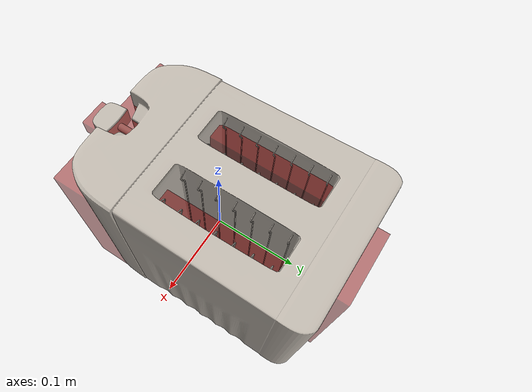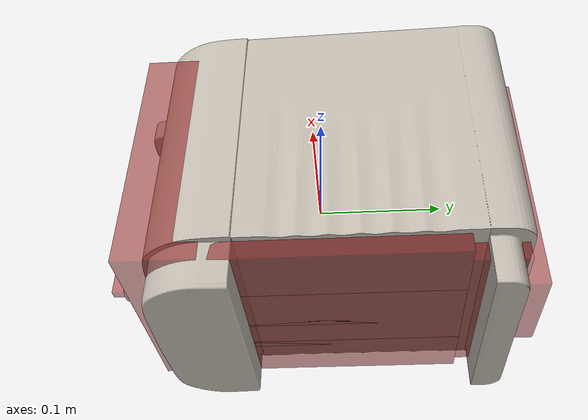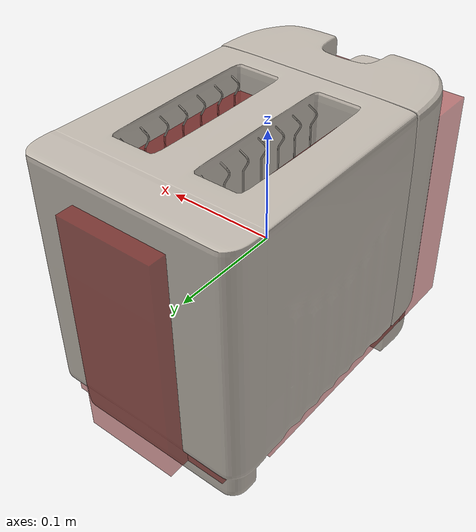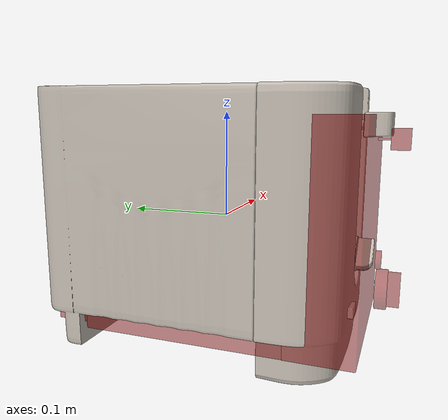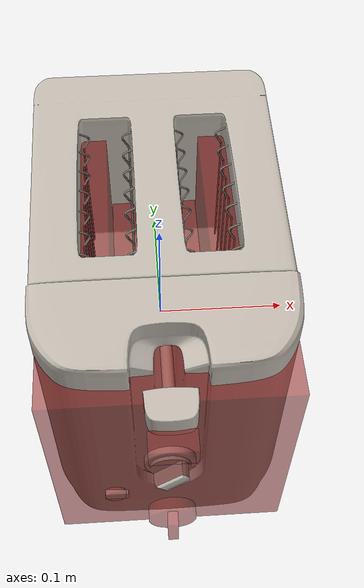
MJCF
<?xml version='1.0' encoding='UTF-8'?>
<mujoco model="model">
  <option timestep="0.002" gravity="0.0 0.0 -9.81"/>
  <compiler angle="radian"/>
  <asset>
    <mesh file="visuals/button_cancel.obj" name="button_cancel_vis"/>
    <mesh file="visuals/knob_doneness.obj" name="knob_doneness_vis"/>
    <mesh file="visuals/lever.obj" name="lever_vis"/>
    <mesh file="visuals/Body001.obj" name="Body001_vis"/>
    <mesh file="visuals/Body002.obj" name="Body002_vis"/>
    <texture file="visuals/T_BC001.png" name="Body001_material" type="2d"/>
    <material name="Body001_material" rgba="1 1 1 1.0" texture="Body001_material" shininess="0.141421377658844" specular="0.3103448502657381"/>
    <texture file="visuals/T_BC001.png" name="button_cancel_material" type="2d"/>
    <material name="button_cancel_material" rgba="1 1 1 1.0" texture="button_cancel_material" shininess="0.141421377658844" specular="0.3103448502657381"/>
    <texture file="visuals/T_BC001.png" name="knob_doneness_material" type="2d"/>
    <material name="knob_doneness_material" rgba="1 1 1 1.0" texture="knob_doneness_material" shininess="0.141421377658844" specular="0.3103448502657381"/>
    <texture file="visuals/T_BC001.png" name="lever_material" type="2d"/>
    <material name="lever_material" rgba="1 1 1 1.0" texture="lever_material" shininess="0.141421377658844" specular="0.3103448502657381"/>
    <texture file="visuals/T_BC001.png" name="Body002_material" type="2d"/>
    <material name="Body002_material" rgba="1 1 1 1.0" texture="Body002_material" shininess="0.141421377658844" specular="2"/>
  </asset>
  <default>
    <default class="visual">
      <geom conaffinity="0" contype="0" group="1" type="mesh"/>
    </default>
    <default class="collision_1">
      <geom group="0" rgba="0.5 0 0 0.5" solref="0.004 1" solimp="0.998 0.998 0.001"/>
    </default>
    <default class="collision_2">
      <geom group="0" rgba="0.5 0 0 0.5" solref="0.004 1" solimp="0.998 0.998 0.001"/>
    </default>
    <default class="collision_3">
      <geom group="0" rgba="0.5 0 0 0.5" solref="0.004 1" solimp="0.998 0.998 0.001"/>
    </default>
    <default class="collision_4">
      <geom group="0" rgba="0.5 0 0 0.5" solref="0.004 1" solimp="0.998 0.998 0.001"/>
    </default>
    <default class="collision_5">
      <geom group="0" rgba="0.5 0 0 0.5" solref="0.004 1" solimp="0.998 0.998 0.001"/>
    </default>
    <default class="spawn">
      <geom group="0" rgba="1 1 1 0.5" contype="0" conaffinity="0"/>
      <site group="0" rgba="1 1 1 0.5"/>
    </default>
    <default class="region">
      <geom group="1" conaffinity="0" contype="0" rgba="0 1 0 0" mass="0"/>
    </default>
  </default>
  <worldbody>
    <body>
      <body name="object">
        <geom mesh="Body001_vis" type="mesh" solimp="0.998 0.998 0.001" solref="0.001 1" friction="0.95 0.3 0.1" class="visual" material="Body001_material"/>
        <geom type="box" pos="0.00018687 -0.10919147 -0.00121267" size="0.08817454427480698 0.029730087146162987 0.0990498885512352" quat="1.0 0.0 0.0 0.0" class="collision_1"/>
        <geom type="box" pos="-0.00005249 0.15723792 -0.00003267" size="0.04115726798772812 0.009681490249931812 0.1002298891544342" quat="1.0 0.0 0.0 0.0" class="collision_1"/>
        <geom type="box" pos="0.00015748 0.12817363 -0.00003267" size="0.07515032589435577 0.020226074382662773 0.1002298891544342" quat="1.0 0.0 0.0 0.0" class="collision_1"/>
        <geom type="box" pos="0.06164963 0.01357792 -0.00030771" size="0.025250708684325218 0.0945918932557106 0.09995485097169876" quat="1.0 0.0 0.0 0.0" class="collision_1"/>
        <geom type="box" pos="-0.06224637 0.01357792 -0.00030771" size="0.025227822363376617 0.0945918932557106 0.09995485097169876" quat="1.0 0.0 0.0 0.0" class="collision_1"/>
        <geom type="box" pos="-0.00024713 0.01357792 -0.00293422" size="0.009823011234402657 0.0945918932557106 0.09732832759618759" quat="1.0 0.0 0.0 0.0" class="collision_1"/>
        <geom type="box" pos="0.00061866 0.01357792 -0.08496363" size="0.04547823965549469 0.0945918932557106 0.015298928134143353" quat="1.0 0.0 0.0 0.0" class="collision_1"/>
        <body name="button_cancel">
          <joint axis="0.0 1.0 0.0" pos="-0.04178955 -0.14846219 -0.02024102" limited="true" name="button_cancel_joint" range="0.0 0.001" type="slide" damping="1" frictionloss="1" armature=".01" stiffness="4" springref="-1"/>
          <geom mesh="button_cancel_vis" type="mesh" solimp="0.998 0.998 0.001" solref="0.001 1" friction="0.95 0.3 0.1" class="visual" material="button_cancel_material"/>
          <geom class="collision_2" type="cylinder" pos="-0.04171168 -0.14827710 -0.02038984" size="0.007640385068953037 0.00218280591070652" quat="0.7071068286895752 0.7071067690849304 0.0 0.0" name="button_cancel_main"/>
        </body>
        <body name="knob_doneness">
          <joint axis="0.0 1.0 0.0" pos="0.00011683 -0.15586427 -0.05894827" limited="true" name="knob_doneness_joint" range="0.0 5.235987755982989" type="hinge" damping="0.05" frictionloss="0.75" armature="1"/>
          <geom mesh="knob_doneness_vis" type="mesh" solimp="0.998 0.998 0.001" solref="0.001 1" friction="0.95 0.3 0.1" class="visual" material="knob_doneness_material"/>
          <geom type="cylinder" pos="0.00009552 -0.15036432 -0.05902691" size="0.0183915626257658 0.005169660784304142" quat="0.7061915993690491 0.7061915397644043 -0.035964950919151306 0.03596493974328041" class="collision_3" friction="100 0.5 0.01"/>
          <geom class="collision_3" type="box" pos="0.00000000 -0.16053438 -0.05846751" size="0.0038574528880417347 0.0059303767047822475 0.015444830991327763" quat="1.0 0.0 0.0 0.0" name="knob_doneness_main" friction="100 0.5 0.01"/>
        </body>
        <body name="lever">
          <joint axis="0.0 0.0 -1.0" pos="0.00004227 -0.15395748 0.07689636" limited="true" name="lever_joint" range="0.0 0.06" type="slide" damping="1" frictionloss="1" armature=".01" stiffness="3" springref="-0.5"/>
          <geom class="region" name="reg_slotL" type="box" pos="-0.02347564 0.014479375000000003 0.10078591" size="0.013916890000000001 0.090615025 0.07599996"/>
          <geom class="region" name="reg_slotR" type="box" pos="0.02300485 0.014479375000000003 0.10078591" size="0.01403455 0.090615025 0.07599996"/>
          <geom mesh="lever_vis" type="mesh" solimp="0.998 0.998 0.001" solref="0.001 1" friction="0.95 0.3 0.1" class="visual" material="lever_material"/>
          <geom type="box" pos="0.00002935 -0.14610924 0.07687486" size="0.0020564773585647345 0.005792367737740278 0.0009937707800418139" quat="1.0 0.0 0.0 0.0" class="collision_4"/>
          <geom class="collision_4" type="box" pos="-0.00008953 -0.15960257 0.07695001" size="0.01652698963880539 0.007946734316647053 0.008754149079322815" quat="1.0 0.0 0.0 0.0" name="lever_handle"/>
          <geom class="collision_4" type="box" pos="-0.02353080 0.01509549 0.02401931" size="0.012600000016391277 0.08711335808038712 0.0010681907879188657" quat="1.0 0.0 0.0 0.0" name="slotL_floor"/>
          <geom class="collision_4" type="box" pos="0.02294473 0.01509549 0.02401931" size="0.012600000016391277 0.08711335808038712 0.0010681910207495093" quat="1.0 0.0 0.0 0.0" name="slotR_floor"/>
        </body>
        <body name="Body002">
          <geom mesh="Body002_vis" type="mesh" solimp="0.998 0.998 0.001" solref="0.001 1" friction="0.95 0.3 0.1" class="visual" material="Body002_material"/>
        </body>
        <geom class="region" name="reg_main" type="box" pos="0.0 0.008187689999999997 0.0" size="0.08899439 0.16036178 0.10103241"/>
      </body>
    </body>
  </worldbody>
  <actuator>
    <motor name="button_cancel_joint_actuator" joint="button_cancel_joint" gear="0.5"/>
    <motor name="knob_doneness_joint_actuator" joint="knob_doneness_joint" gear="10"/>
    <motor name="lever_joint_actuator" joint="lever_joint" gear="2"/>
  </actuator>
</mujoco>
